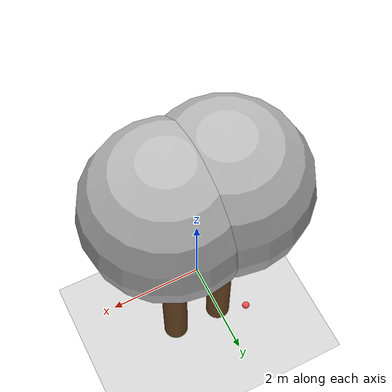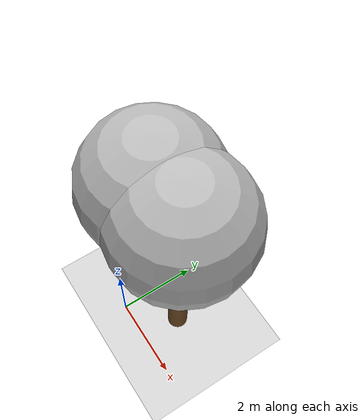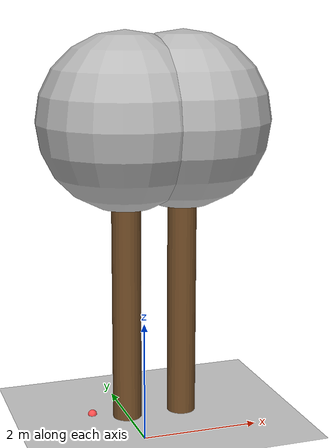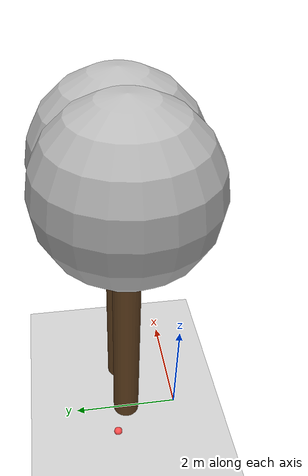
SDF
<sdf version="1.7">
 <world name="default">
  <model name="ground_plane">
   <static>1</static>
   <link name="link">
    <collision name="collision">
     <geometry><plane><normal>0 0 1</normal><size>100 100</size></plane></geometry>
     <surface>
      <contact><collide_bitmask>65535</collide_bitmask></contact>
      <friction><ode><mu>100</mu><mu2>50</mu2></ode></friction>
     </surface>
    </collision>
    <visual name="visual">
     <cast_shadows>0</cast_shadows>
     <geometry><plane><normal>0 0 1</normal><size>100 100</size></plane></geometry>
     <material>
      <script><uri>file://media/materials/scripts/gazebo.material</uri><name>Gazebo/Grey</name></script>
     </material>
    </visual>
   </link>
  </model>
  <model name="tree_simple_94">
   <static>1</static>
   <link name="link">
    <pose>0 0 0.1 0 -0 0</pose>
    <inertial>
     <mass>666</mass>
     <inertia>
      <ixx>0.0861167</ixx>
      <ixy>0</ixy>
      <ixz>0</ixz>
      <iyy>0.0861167</iyy>
      <iyz>0</iyz>
      <izz>0.0861167</izz>
     </inertia>
    </inertial>
    <collision name="collision_trunk">
     <pose>0 0 2 0 -0 0</pose>
     <geometry><cylinder><radius>0.25</radius><length>4</length></cylinder></geometry>
     <surface>
      <contact>
       <poissons_ratio>0.347</poissons_ratio>
       <elastic_modulus>8.8e+09</elastic_modulus>
       <ode><kp>100000</kp><kd>100</kd><max_vel>100</max_vel><min_depth>0.001</min_depth></ode>
      </contact>
      <friction>
       <torsional>
        <coefficient>1</coefficient>
        <use_patch_radius>0</use_patch_radius>
        <surface_radius>0.01</surface_radius>
       </torsional>
      </friction>
     </surface>
    </collision>
    <collision name="collision_treetop">
     <pose>0 0 5.2 0 -0 0</pose>
     <geometry><sphere><radius>1.5</radius></sphere></geometry>
     <surface>
      <contact>
       <poissons_ratio>0.347</poissons_ratio>
       <elastic_modulus>8.8e+09</elastic_modulus>
       <ode><kp>100000</kp><kd>100</kd><max_vel>100</max_vel><min_depth>0.001</min_depth></ode>
      </contact>
      <friction>
       <torsional>
        <coefficient>1</coefficient>
        <use_patch_radius>0</use_patch_radius>
        <surface_radius>0.01</surface_radius>
       </torsional>
      </friction>
     </surface>
    </collision>
    <visual name="trunk">
     <pose>0 0 2 0 -0 0</pose>
     <geometry><cylinder><radius>0.25</radius><length>4</length></cylinder></geometry>
     <material>
      <script>
       <uri>model://tree_simple/scripts</uri>
       <uri>model://tree_simple/materials/textures</uri>
       <name>TreeSimple/Trunk</name>
      </script>
     </material>
    </visual>
    <visual name="treetop">
     <pose>0 0 5.2 0 -0 0</pose>
     <geometry><sphere><radius>1.5</radius></sphere></geometry>
     <material>
      <script>
       <uri>model://tree_simple/scripts</uri>
       <uri>model://tree_simple/materials/textures</uri>
       <name>TreeSimple/Treetop</name>
      </script>
     </material>
    </visual>
   </link>
   <pose>0 1 -0.1 0 -0 0</pose>
  </model>
  <model name="tree_simple_95">
   <static>1</static>
   <link name="link">
    <pose>0 0 0.1 0 -0 0</pose>
    <inertial>
     <mass>666</mass>
     <inertia>
      <ixx>0.0861167</ixx>
      <ixy>0</ixy>
      <ixz>0</ixz>
      <iyy>0.0861167</iyy>
      <iyz>0</iyz>
      <izz>0.0861167</izz>
     </inertia>
    </inertial>
    <collision name="collision_trunk">
     <pose>0 0 2 0 -0 0</pose>
     <geometry><cylinder><radius>0.25</radius><length>4</length></cylinder></geometry>
     <surface>
      <contact>
       <poissons_ratio>0.347</poissons_ratio>
       <elastic_modulus>8.8e+09</elastic_modulus>
       <ode><kp>100000</kp><kd>100</kd><max_vel>100</max_vel><min_depth>0.001</min_depth></ode>
      </contact>
      <friction>
       <torsional>
        <coefficient>1</coefficient>
        <use_patch_radius>0</use_patch_radius>
        <surface_radius>0.01</surface_radius>
       </torsional>
      </friction>
     </surface>
    </collision>
    <collision name="collision_treetop">
     <pose>0 0 5.2 0 -0 0</pose>
     <geometry><sphere><radius>1.5</radius></sphere></geometry>
     <surface>
      <contact>
       <poissons_ratio>0.347</poissons_ratio>
       <elastic_modulus>8.8e+09</elastic_modulus>
       <ode><kp>100000</kp><kd>100</kd><max_vel>100</max_vel><min_depth>0.001</min_depth></ode>
      </contact>
      <friction>
       <torsional>
        <coefficient>1</coefficient>
        <use_patch_radius>0</use_patch_radius>
        <surface_radius>0.01</surface_radius>
       </torsional>
      </friction>
     </surface>
    </collision>
    <visual name="trunk">
     <pose>0 0 2 0 -0 0</pose>
     <geometry><cylinder><radius>0.25</radius><length>4</length></cylinder></geometry>
     <material>
      <script>
       <uri>model://tree_simple/scripts</uri>
       <uri>model://tree_simple/materials/textures</uri>
       <name>TreeSimple/Trunk</name>
      </script>
     </material>
    </visual>
    <visual name="treetop">
     <pose>0 0 5.2 0 -0 0</pose>
     <geometry><sphere><radius>1.5</radius></sphere></geometry>
     <material>
      <script>
       <uri>model://tree_simple/scripts</uri>
       <uri>model://tree_simple/materials/textures</uri>
       <name>TreeSimple/Treetop</name>
      </script>
     </material>
    </visual>
   </link>
   <pose>1 1 -0.1 0 -0 0</pose>
  </model>
  <model name="seed_red_386">
   <link name="link">
    <inertial>
     <mass>1</mass>
     <inertia><ixx>0.1</ixx><ixy>0</ixy><ixz>0</ixz><iyy>0.1</iyy><iyz>0</iyz><izz>0.1</izz></inertia>
    </inertial>
    <visual name="visual">
     <geometry><sphere><radius>0.08</radius></sphere></geometry>
     <material>
      <script><name>Gazebo/Grey</name><uri>file://media/materials/scripts/gazebo.material</uri></script>
      <shader type="pixel"><normal_map>__default__</normal_map></shader>
      <ambient>1 0.3 0.3 1</ambient>
      <diffuse>0.7 0.7 0.7 1</diffuse>
      <specular>0.01 0.01 0.01 1</specular>
      <emissive>0 0 0 1</emissive>
     </material>
    </visual>
    <collision name="collision">
     <geometry><sphere><radius>0.0005</radius></sphere></geometry>
     <surface>
      <friction>
       <ode><mu>1</mu><mu2>1</mu2><fdir1>0 0 0</fdir1><slip1>0</slip1><slip2>0</slip2></ode>
       <torsional>
        <coefficient>1</coefficient>
        <patch_radius>0</patch_radius>
        <surface_radius>0</surface_radius>
        <use_patch_radius>1</use_patch_radius>
        <ode><slip>0</slip></ode>
       </torsional>
      </friction>
      <bounce><restitution_coefficient>0</restitution_coefficient><threshold>1e+06</threshold></bounce>
      <contact>
       <collide_without_contact>0</collide_without_contact>
       <collide_without_contact_bitmask>1</collide_without_contact_bitmask>
       <collide_bitmask>1</collide_bitmask>
       <ode>
        <soft_cfm>0</soft_cfm>
        <soft_erp>0.2</soft_erp>
        <kp>1e+13</kp>
        <kd>1</kd>
        <max_vel>0.01</max_vel>
        <min_depth>0</min_depth>
       </ode>
       <bullet>
        <split_impulse>1</split_impulse>
        <split_impulse_penetration_threshold>-0.01</split_impulse_penetration_threshold>
        <soft_cfm>0</soft_cfm>
        <soft_erp>0.2</soft_erp>
        <kp>1e+13</kp>
        <kd>1</kd>
       </bullet>
      </contact>
     </surface>
    </collision>
   </link>
   <static>0</static>
   <pose>-0.57565 1.23385 0.0005 0 -0 0</pose>
  </model>
 </world>
</sdf>
